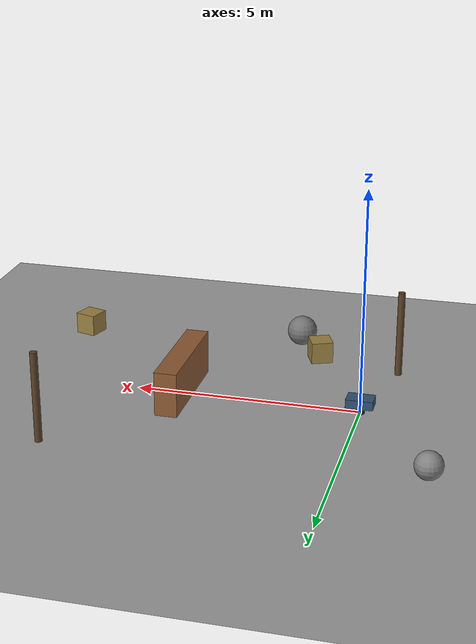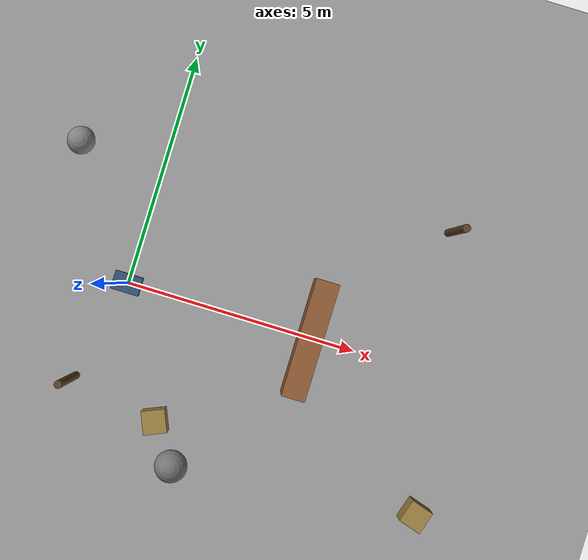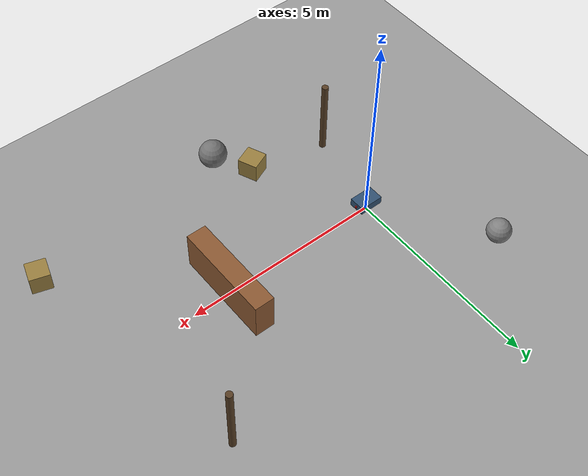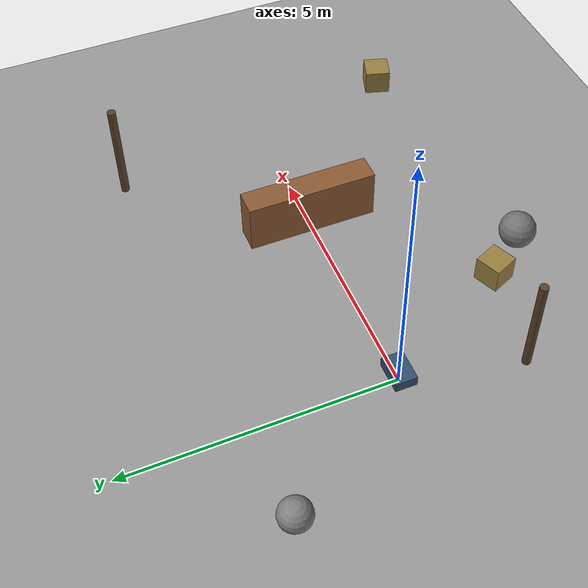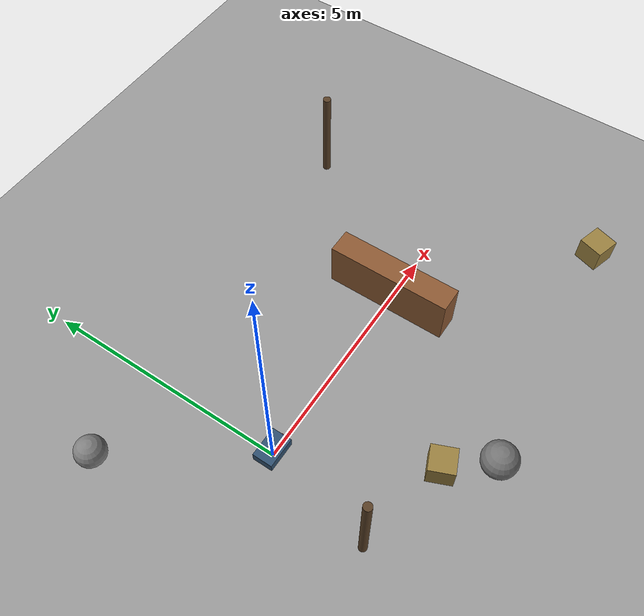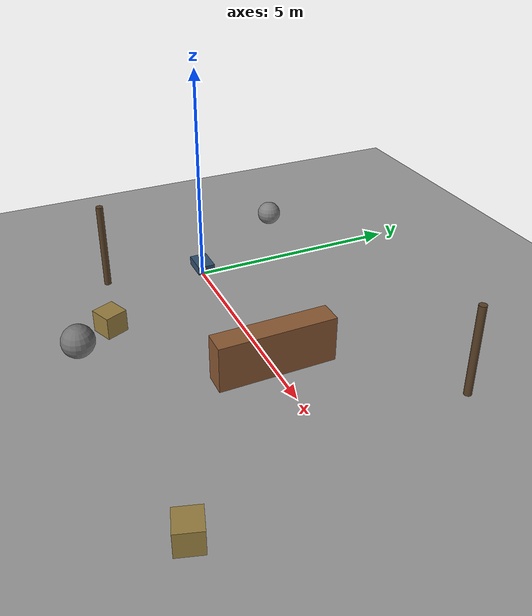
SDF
<?xml version="1.0" ?>
<!-- Simulation world for the UGV platform in Gazebo Fortress. -->
<sdf version="1.6">
  <world name="ugv_world">
    <physics name="1ms" type="ode">
      <max_step_size>0.001</max_step_size>
      <real_time_factor>1.0</real_time_factor>
      <real_time_update_rate>1000</real_time_update_rate>
    </physics>

    <plugin filename="ignition-gazebo-physics-system" name="gz::sim::systems::Physics" />
    <plugin filename="ignition-gazebo-sensors-system" name="gz::sim::systems::Sensors">
      <render_engine>ogre2</render_engine>
    </plugin>
    <plugin filename="ignition-gazebo-imu-system" name="gz::sim::systems::Imu" />
    <plugin filename="ignition-gazebo-user-commands-system" name="gz::sim::systems::UserCommands" />
    <plugin filename="ignition-gazebo-scene-broadcaster-system" name="gz::sim::systems::SceneBroadcaster" />

    <scene>
      <ambient>0.8 0.8 0.8</ambient>
      <background>0.7 0.7 0.7</background>
      <grid>true</grid>
    </scene>

    <light type="directional" name="sun">
      <pose>0 0 15 0 0 0</pose>
      <diffuse>0.8 0.8 0.8 1</diffuse>
      <specular>0.2 0.2 0.2 1</specular>
      <direction>-0.5 0.1 -0.9</direction>
    </light>

    <model name="blocker_wall">
      <static>true</static>
      <pose>4 0 0.5 0 0 0</pose>
      <link name="link">
        <collision name="collision">
          <geometry>
            <box>
              <size>0.5 2.5 1.0</size>
            </box>
          </geometry>
          <surface>
            <friction>
              <ode>
                <mu>0.4</mu>
                <mu2>0.4</mu2>
              </ode>
            </friction>
          </surface>
        </collision>
        <visual name="visual">
          <geometry>
            <box>
              <size>0.5 2.5 1.0</size>
            </box>
          </geometry>
          <material>
            <ambient>0.55 0.35 0.2 1</ambient>
            <diffuse>0.55 0.35 0.2 1</diffuse>
          </material>
        </visual>
      </link>
    </model>

    <model name="rock_1">
      <static>true</static>
      <pose>2 -3.4 0.35 0 0 0.3</pose>
      <link name="link">
        <collision name="collision">
          <geometry>
            <sphere>
              <radius>0.35</radius>
            </sphere>
          </geometry>
        </collision>
        <visual name="visual">
          <geometry>
            <sphere>
              <radius>0.35</radius>
            </sphere>
          </geometry>
          <material>
            <ambient>0.45 0.45 0.45 1</ambient>
            <diffuse>0.45 0.45 0.45 1</diffuse>
          </material>
        </visual>
      </link>
    </model>

    <model name="rock_2">
      <static>true</static>
      <pose>-1.8 2.6 0.3 0 0 -0.2</pose>
      <link name="link">
        <collision name="collision">
          <geometry>
            <sphere>
              <radius>0.3</radius>
            </sphere>
          </geometry>
        </collision>
        <visual name="visual">
          <geometry>
            <sphere>
              <radius>0.3</radius>
            </sphere>
          </geometry>
          <material>
            <ambient>0.5 0.5 0.5 1</ambient>
            <diffuse>0.5 0.5 0.5 1</diffuse>
          </material>
        </visual>
      </link>
    </model>

    <model name="crate_1">
      <static>true</static>
      <pose>1.4 -2.6 0.25 0 0 0.4</pose>
      <link name="link">
        <collision name="collision">
          <geometry>
            <box>
              <size>0.5 0.5 0.5</size>
            </box>
          </geometry>
        </collision>
        <visual name="visual">
          <geometry>
            <box>
              <size>0.5 0.5 0.5</size>
            </box>
          </geometry>
          <material>
            <ambient>0.6 0.5 0.25 1</ambient>
            <diffuse>0.6 0.5 0.25 1</diffuse>
          </material>
        </visual>
      </link>
    </model>

    <model name="crate_2">
      <static>true</static>
      <pose>7.2 -2.9 0.25 0 0 -0.3</pose>
      <link name="link">
        <collision name="collision">
          <geometry>
            <box>
              <size>0.5 0.5 0.5</size>
            </box>
          </geometry>
        </collision>
        <visual name="visual">
          <geometry>
            <box>
              <size>0.5 0.5 0.5</size>
            </box>
          </geometry>
          <material>
            <ambient>0.6 0.5 0.25 1</ambient>
            <diffuse>0.6 0.5 0.25 1</diffuse>
          </material>
        </visual>
      </link>
    </model>

    <model name="tree_trunk_1">
      <static>true</static>
      <pose>6.2 3.0 1.0 0 0 0</pose>
      <link name="link">
        <collision name="collision">
          <geometry>
            <cylinder>
              <radius>0.08</radius>
              <length>2.0</length>
            </cylinder>
          </geometry>
        </collision>
        <visual name="visual">
          <geometry>
            <cylinder>
              <radius>0.08</radius>
              <length>2.0</length>
            </cylinder>
          </geometry>
          <material>
            <ambient>0.35 0.25 0.15 1</ambient>
            <diffuse>0.35 0.25 0.15 1</diffuse>
          </material>
        </visual>
      </link>
    </model>

    <model name="tree_trunk_2">
      <static>true</static>
      <pose>-0.5 -2.2 1.0 0 0 0</pose>
      <link name="link">
        <collision name="collision">
          <geometry>
            <cylinder>
              <radius>0.08</radius>
              <length>2.0</length>
            </cylinder>
          </geometry>
        </collision>
        <visual name="visual">
          <geometry>
            <cylinder>
              <radius>0.08</radius>
              <length>2.0</length>
            </cylinder>
          </geometry>
          <material>
            <ambient>0.35 0.25 0.15 1</ambient>
            <diffuse>0.35 0.25 0.15 1</diffuse>
          </material>
        </visual>
      </link>
    </model>

    <model name="ugv">
      <pose>0 0 0.01 0 0 0</pose>
      <link name="base_footprint">
        <inertial>
          <pose>0 0 0.06 0 0 0</pose>
          <mass>15</mass>
          <inertia>
            <ixx>0.25</ixx>
            <ixy>0</ixy>
            <ixz>0</ixz>
            <iyy>0.5</iyy>
            <iyz>0</iyz>
            <izz>0.65</izz>
          </inertia>
        </inertial>
        <collision name="chassis_collision">
          <pose>0 0 0.25 0 0 0</pose>
          <geometry>
            <box>
              <size>0.6 0.4 0.2</size>
            </box>
          </geometry>
          <surface>
            <friction>
              <ode>
                <mu>0.4</mu>
                <mu2>0.4</mu2>
              </ode>
            </friction>
          </surface>
        </collision>
        <collision name="hull_collision">
          <pose>0 0 0.02 0 0 0</pose>
          <geometry>
            <box>
              <size>0.14 0.30 0.04</size>
            </box>
          </geometry>
          <surface>
            <friction>
              <ode>
                <mu>0.4</mu>
                <mu2>0.4</mu2>
              </ode>
            </friction>
          </surface>
        </collision>
        <visual name="chassis_visual">
          <pose>0 0 0.25 0 0 0</pose>
          <geometry>
            <box>
              <size>0.6 0.4 0.2</size>
            </box>
          </geometry>
          <material>
            <ambient>0.1875 0.3125 0.4375 1</ambient>
            <diffuse>0.1875 0.3125 0.4375 1</diffuse>
          </material>
        </visual>
        <visual name="camera_visual">
          <pose>0.3 0 0.25 0 0 0</pose>
          <geometry>
            <box>
              <size>0.06 0.04 0.06</size>
            </box>
          </geometry>
          <material>
            <ambient>0.8 0.1 0.1 1</ambient>
            <diffuse>0.8 0.1 0.1 1</diffuse>
          </material>
        </visual>
        <sensor name="camera_sensor" type="camera">
          <always_on>1</always_on>
          <update_rate>20</update_rate>
          <visualize>false</visualize>
          <pose>0.3 0 0.25 0 0 0</pose>
          <topic>camera</topic>
          <camera>
            <optical_frame_id>camera_optical_frame</optical_frame_id>
            <horizontal_fov>1.3962634</horizontal_fov>
            <image>
              <width>640</width>
              <height>480</height>
            </image>
            <clip>
              <near>0.1</near>
              <far>100</far>
            </clip>
          </camera>
        </sensor>
        <sensor name="gpu_lidar_sensor" type="gpu_lidar">
          <always_on>1</always_on>
          <update_rate>20</update_rate>
          <visualize>false</visualize>
          <pose>0 0 0.375 0 0 0</pose>
          <topic>scan</topic>
          <ignition_frame_id>lidar_link</ignition_frame_id>
          <lidar>
            <scan>
              <horizontal>
                <samples>360</samples>
                <resolution>1</resolution>
                <min_angle>-3.14159265358979</min_angle>
                <max_angle>3.14159265358979</max_angle>
              </horizontal>
              <vertical>
                <samples>1</samples>
                <resolution>1</resolution>
                <min_angle>0.0</min_angle>
                <max_angle>0.0</max_angle>
              </vertical>
            </scan>
            <range>
              <min>0.1</min>
              <max>20.0</max>
              <resolution>0.01</resolution>
            </range>
          </lidar>
        </sensor>
        <sensor name="imu_sensor" type="imu">
          <always_on>1</always_on>
          <update_rate>100</update_rate>
          <visualize>false</visualize>
          <pose>0 0 0.15 0 0 0</pose>
          <topic>imu</topic>
          <ignition_frame_id>imu_link</ignition_frame_id>
        </sensor>
      </link>

      <link name="front_left_wheel">
        <inertial>
          <mass>1</mass>
          <inertia>
            <ixx>0.005</ixx>
            <ixy>0</ixy>
            <ixz>0</ixz>
            <iyy>0.005</iyy>
            <iyz>0</iyz>
            <izz>0.01</izz>
          </inertia>
        </inertial>
        <collision name="collision">
          <pose>0 0 0 1.57079632679 0 0</pose>
          <geometry>
            <sphere>
              <radius>0.1</radius>
            </sphere>
          </geometry>
          <surface>
            <friction>
              <ode>
                <mu>0.4</mu>
                <mu2>0.4</mu2>
              </ode>
            </friction>
          </surface>
        </collision>
        <visual name="visual">
          <pose>0 0 0 1.57079632679 0 0</pose>
          <geometry>
            <sphere>
              <radius>0.1</radius>
            </sphere>
          </geometry>
          <material>
            <ambient>0.1 0.1 0.1 1</ambient>
            <diffuse>0.1 0.1 0.1 1</diffuse>
          </material>
        </visual>
      </link>

      <link name="front_right_wheel">
        <inertial>
          <mass>1</mass>
          <inertia>
            <ixx>0.005</ixx>
            <ixy>0</ixy>
            <ixz>0</ixz>
            <iyy>0.005</iyy>
            <iyz>0</iyz>
            <izz>0.01</izz>
          </inertia>
        </inertial>
        <collision name="collision">
          <pose>0 0 0 1.57079632679 0 0</pose>
          <geometry>
            <sphere>
              <radius>0.1</radius>
            </sphere>
          </geometry>
          <surface>
            <friction>
              <ode>
                <mu>0.4</mu>
                <mu2>0.4</mu2>
              </ode>
            </friction>
          </surface>
        </collision>
        <visual name="visual">
          <pose>0 0 0 1.57079632679 0 0</pose>
          <geometry>
            <sphere>
              <radius>0.1</radius>
            </sphere>
          </geometry>
          <material>
            <ambient>0.1 0.1 0.1 1</ambient>
            <diffuse>0.1 0.1 0.1 1</diffuse>
          </material>
        </visual>
      </link>

      <link name="rear_left_wheel">
        <inertial>
          <mass>1</mass>
          <inertia>
            <ixx>0.005</ixx>
            <ixy>0</ixy>
            <ixz>0</ixz>
            <iyy>0.005</iyy>
            <iyz>0</iyz>
            <izz>0.01</izz>
          </inertia>
        </inertial>
        <collision name="collision">
          <pose>0 0 0 1.57079632679 0 0</pose>
          <geometry>
            <sphere>
              <radius>0.1</radius>
            </sphere>
          </geometry>
          <surface>
            <friction>
              <ode>
                <mu>0.4</mu>
                <mu2>0.4</mu2>
              </ode>
            </friction>
          </surface>
        </collision>
        <visual name="visual">
          <pose>0 0 0 1.57079632679 0 0</pose>
          <geometry>
            <sphere>
              <radius>0.1</radius>
            </sphere>
          </geometry>
          <material>
            <ambient>0.1 0.1 0.1 1</ambient>
            <diffuse>0.1 0.1 0.1 1</diffuse>
          </material>
        </visual>
      </link>

      <link name="rear_right_wheel">
        <inertial>
          <mass>1</mass>
          <inertia>
            <ixx>0.005</ixx>
            <ixy>0</ixy>
            <ixz>0</ixz>
            <iyy>0.005</iyy>
            <iyz>0</iyz>
            <izz>0.01</izz>
          </inertia>
        </inertial>
        <collision name="collision">
          <pose>0 0 0 1.57079632679 0 0</pose>
          <geometry>
            <sphere>
              <radius>0.1</radius>
            </sphere>
          </geometry>
          <surface>
            <friction>
              <ode>
                <mu>0.4</mu>
                <mu2>0.4</mu2>
              </ode>
            </friction>
          </surface>
        </collision>
        <visual name="visual">
          <pose>0 0 0 1.57079632679 0 0</pose>
          <geometry>
            <sphere>
              <radius>0.1</radius>
            </sphere>
          </geometry>
          <material>
            <ambient>0.1 0.1 0.1 1</ambient>
            <diffuse>0.1 0.1 0.1 1</diffuse>
          </material>
        </visual>
      </link>

      <joint name="front_left_wheel_joint" type="revolute">
        <parent>base_footprint</parent>
        <child>front_left_wheel</child>
        <pose>0.18 0.25 0.10 0 0 0</pose>
        <axis>
          <xyz>0 1 0</xyz>
          <limit>
            <lower>-1e16</lower>
            <upper>1e16</upper>
          </limit>
        </axis>
      </joint>
      <joint name="front_right_wheel_joint" type="revolute">
        <parent>base_footprint</parent>
        <child>front_right_wheel</child>
        <pose>0.18 -0.25 0.10 0 0 0</pose>
        <axis>
          <xyz>0 1 0</xyz>
          <limit>
            <lower>-1e16</lower>
            <upper>1e16</upper>
          </limit>
        </axis>
      </joint>
      <joint name="rear_left_wheel_joint" type="revolute">
        <parent>base_footprint</parent>
        <child>rear_left_wheel</child>
        <pose>-0.18 0.25 0.10 0 0 0</pose>
        <axis>
          <xyz>0 1 0</xyz>
          <limit>
            <lower>-1e16</lower>
            <upper>1e16</upper>
          </limit>
        </axis>
      </joint>
      <joint name="rear_right_wheel_joint" type="revolute">
        <parent>base_footprint</parent>
        <child>rear_right_wheel</child>
        <pose>-0.18 -0.25 0.10 0 0 0</pose>
        <axis>
          <xyz>0 1 0</xyz>
          <limit>
            <lower>-1e16</lower>
            <upper>1e16</upper>
          </limit>
        </axis>
      </joint>

      <plugin filename="ignition-gazebo-velocity-control-system"
              name="gz::sim::systems::VelocityControl">
        <topic>/cmd_vel</topic>
        <linear_velocity_limit>0.6</linear_velocity_limit>
        <linear_velocity_gain>2.6</linear_velocity_gain>
        <angular_velocity_limit>1.2</angular_velocity_limit>
        <angular_velocity_gain>2.0</angular_velocity_gain>
      </plugin>

      <plugin filename="ignition-gazebo-odometry-publisher-system"
              name="gz::sim::systems::OdometryPublisher">
        <odom_topic>odom</odom_topic>
        <odom_frame>odom</odom_frame>
        <robot_base_frame>base_footprint</robot_base_frame>
        <odom_publish_frequency>50</odom_publish_frequency>
      </plugin>
    </model>

    <model name="ground_plane">
      <static>true</static>
      <link name="link">
        <collision name="collision">
          <geometry>
            <plane>
              <normal>0 0 1</normal>
              <size>50 50</size>
            </plane>
          </geometry>
          <surface>
            <friction>
              <ode>
                <mu>0.4</mu>
                <mu2>0.4</mu2>
              </ode>
            </friction>
          </surface>
        </collision>
        <visual name="visual">
          <geometry>
            <plane>
              <normal>0 0 1</normal>
              <size>50 50</size>
            </plane>
          </geometry>
          <material>
            <ambient>0.6 0.6 0.6 1</ambient>
            <diffuse>0.6 0.6 0.6 1</diffuse>
          </material>
        </visual>
      </link>
    </model>

  </world>
</sdf>
